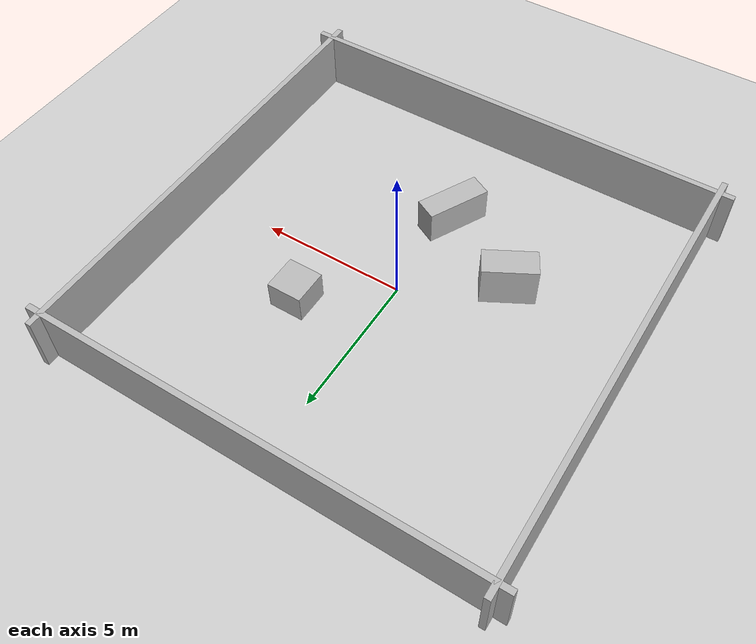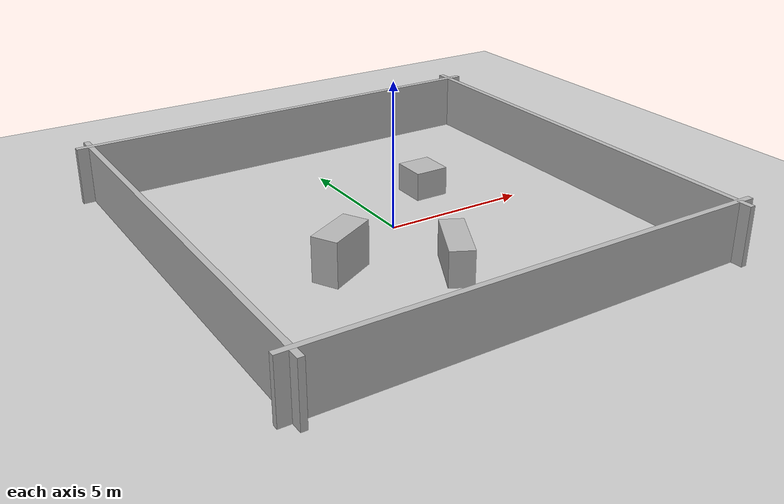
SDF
<?xml version="1.0" ?>
<sdf version="1.6">
  <world name="lidar_lab">
    <include>
      <uri>model://sun</uri>
    </include>
    <include>
      <uri>model://ground_plane</uri>
    </include>

    <model name="wall_north">
      <static>true</static>
      <pose>0 7.5 1.0 0 0 0</pose>
      <link name="link">
        <collision name="collision"><geometry><box><size>16 0.2 2</size></box></geometry></collision>
        <visual name="visual"><geometry><box><size>16 0.2 2</size></box></geometry></visual>
      </link>
    </model>

    <model name="wall_south">
      <static>true</static>
      <pose>0 -7.5 1.0 0 0 0</pose>
      <link name="link">
        <collision name="collision"><geometry><box><size>16 0.2 2</size></box></geometry></collision>
        <visual name="visual"><geometry><box><size>16 0.2 2</size></box></geometry></visual>
      </link>
    </model>

    <model name="wall_east">
      <static>true</static>
      <pose>7.5 0 1.0 0 0 0</pose>
      <link name="link">
        <collision name="collision"><geometry><box><size>0.2 16 2</size></box></geometry></collision>
        <visual name="visual"><geometry><box><size>0.2 16 2</size></box></geometry></visual>
      </link>
    </model>

    <model name="wall_west">
      <static>true</static>
      <pose>-7.5 0 1.0 0 0 0</pose>
      <link name="link">
        <collision name="collision"><geometry><box><size>0.2 16 2</size></box></geometry></collision>
        <visual name="visual"><geometry><box><size>0.2 16 2</size></box></geometry></visual>
      </link>
    </model>

    <model name="box_1">
      <static>true</static>
      <pose>2.5 2.0 0.5 0 0 0</pose>
      <link name="link">
        <collision name="collision"><geometry><box><size>1.2 1.2 1</size></box></geometry></collision>
        <visual name="visual"><geometry><box><size>1.2 1.2 1</size></box></geometry></visual>
      </link>
    </model>

    <model name="box_2">
      <static>true</static>
      <pose>-3.0 -1.8 0.75 0 0 0.5</pose>
      <link name="link">
        <collision name="collision"><geometry><box><size>1.8 0.9 1.5</size></box></geometry></collision>
        <visual name="visual"><geometry><box><size>1.8 0.9 1.5</size></box></geometry></visual>
      </link>
    </model>

    <model name="box_3">
      <static>true</static>
      <pose>0 -3.5 0.6 0 0 1.1</pose>
      <link name="link">
        <collision name="collision"><geometry><box><size>2.2 0.8 1.2</size></box></geometry></collision>
        <visual name="visual"><geometry><box><size>2.2 0.8 1.2</size></box></geometry></visual>
      </link>
    </model>
  </world>
</sdf>
